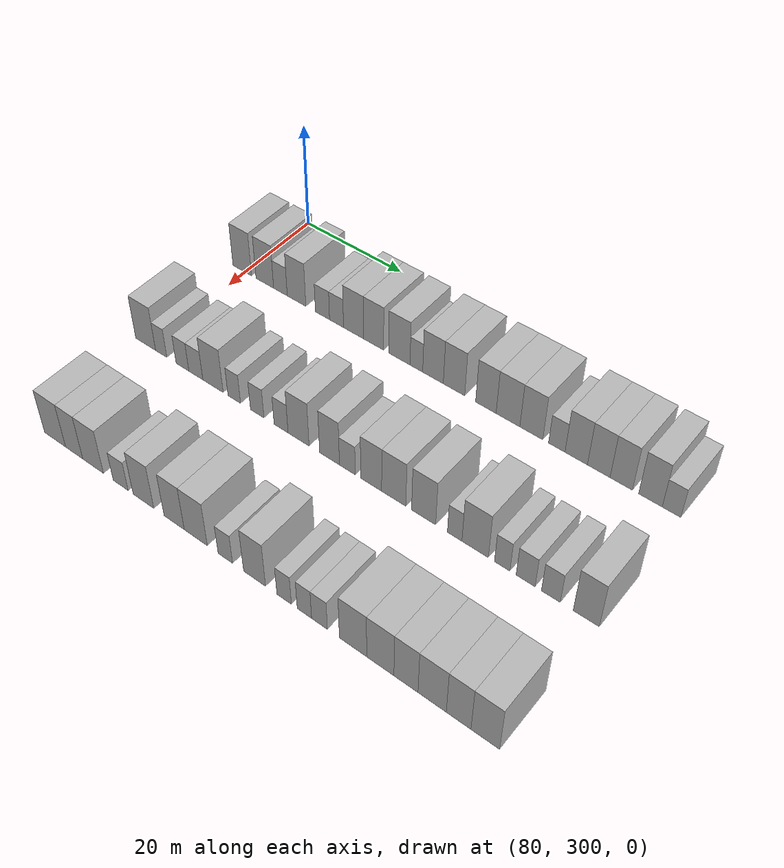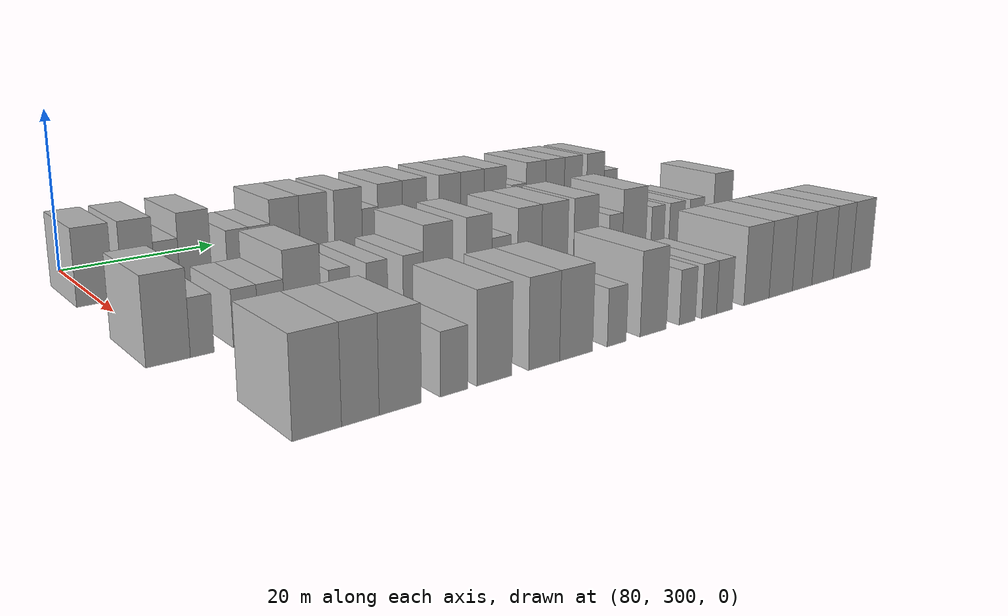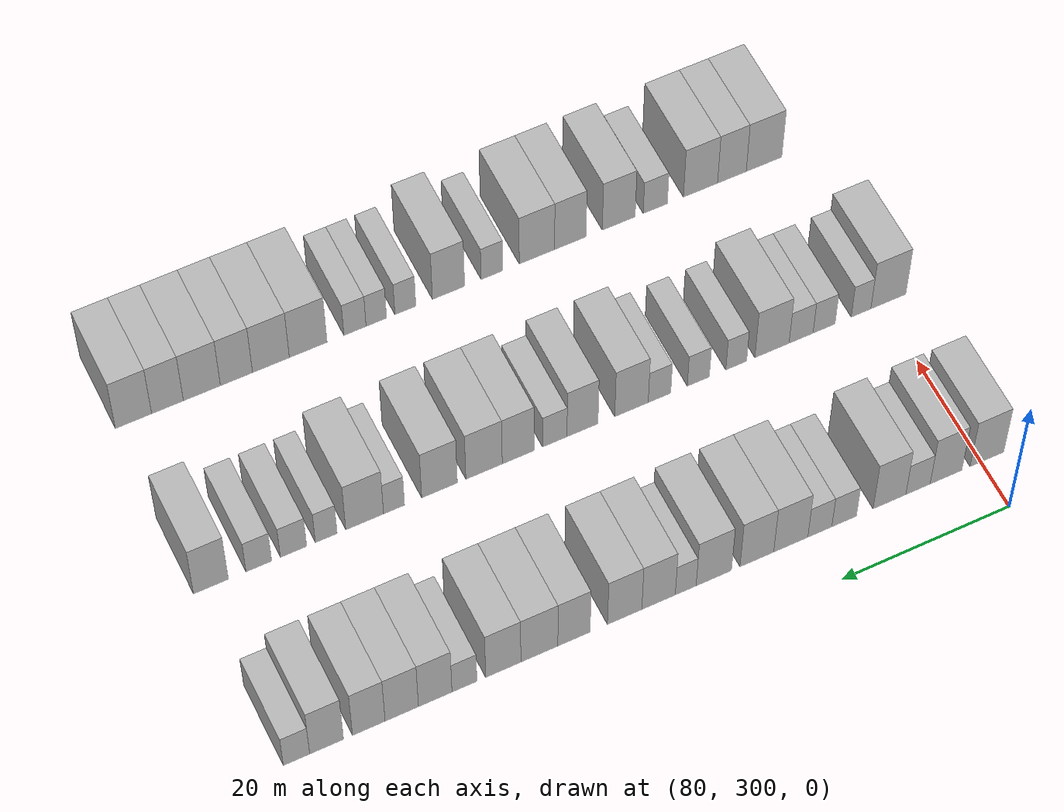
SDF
<sdf version="1.6">
 <world name="default">
  <model name="building_734">
   <static>1</static>
   <pose>91.0000 299.3169 0 0.000000 0.000000 0.000000</pose>
   <link name="link">
    <pose>0 0 4.50 0 0 0</pose>
    <collision name="collision"><geometry><box><size>10.0000 4.1003 9.0000</size></box></geometry></collision>
    <visual name="visual">
     <cast_shadows>0</cast_shadows>
     <geometry><box><size>10.0000 4.1003 9.0000</size></box></geometry>
     <material>
      <script>
       <uri>model://HANNAS_wall/materials/scripts</uri>
       <uri>model://HANNAS_wall/materials/textures</uri>
       <name>vrc/HANNAS_wall</name>
      </script>
     </material>
    </visual>
   </link>
  </model>
  <model name="building_735">
   <static>1</static>
   <pose>91.0000 304.2898 0 0.000000 0.000000 0.000000</pose>
   <link name="link">
    <pose>0 0 4.50 0 0 0</pose>
    <collision name="collision"><geometry><box><size>10.0000 3.8454 9.0000</size></box></geometry></collision>
    <visual name="visual">
     <cast_shadows>0</cast_shadows>
     <geometry><box><size>10.0000 3.8454 9.0000</size></box></geometry>
     <material>
      <script>
       <uri>model://HANNAS_wall/materials/scripts</uri>
       <uri>model://HANNAS_wall/materials/textures</uri>
       <name>vrc/HANNAS_wall</name>
      </script>
     </material>
    </visual>
   </link>
  </model>
  <model name="building_736">
   <static>1</static>
   <pose>91.0000 307.6804 0 0.000000 0.000000 0.000000</pose>
   <link name="link">
    <pose>0 0 3.00 0 0 0</pose>
    <collision name="collision"><geometry><box><size>10.0000 2.9358 6.0000</size></box></geometry></collision>
    <visual name="visual">
     <cast_shadows>0</cast_shadows>
     <geometry><box><size>10.0000 2.9358 6.0000</size></box></geometry>
     <material>
      <script>
       <uri>model://HANNAS_wall/materials/scripts</uri>
       <uri>model://HANNAS_wall/materials/textures</uri>
       <name>vrc/HANNAS_wall</name>
      </script>
     </material>
    </visual>
   </link>
  </model>
  <model name="building_737">
   <static>1</static>
   <pose>91.0000 311.1181 0 0.000000 0.000000 0.000000</pose>
   <link name="link">
    <pose>0 0 4.50 0 0 0</pose>
    <collision name="collision"><geometry><box><size>10.0000 3.9396 9.0000</size></box></geometry></collision>
    <visual name="visual">
     <cast_shadows>0</cast_shadows>
     <geometry><box><size>10.0000 3.9396 9.0000</size></box></geometry>
     <material>
      <script>
       <uri>model://HANNAS_wall/materials/scripts</uri>
       <uri>model://HANNAS_wall/materials/textures</uri>
       <name>vrc/HANNAS_wall</name>
      </script>
     </material>
    </visual>
   </link>
  </model>
  <model name="building_738">
   <static>1</static>
   <pose>91.0000 316.5554 0 0.000000 0.000000 0.000000</pose>
   <link name="link">
    <pose>0 0 3.00 0 0 0</pose>
    <collision name="collision"><geometry><box><size>10.0000 2.9350 6.0000</size></box></geometry></collision>
    <visual name="visual">
     <cast_shadows>0</cast_shadows>
     <geometry><box><size>10.0000 2.9350 6.0000</size></box></geometry>
     <material>
      <script>
       <uri>model://HANNAS_wall/materials/scripts</uri>
       <uri>model://HANNAS_wall/materials/textures</uri>
       <name>vrc/HANNAS_wall</name>
      </script>
     </material>
    </visual>
   </link>
  </model>
  <model name="building_739">
   <static>1</static>
   <pose>91.0000 319.4527 0 0.000000 0.000000 0.000000</pose>
   <link name="link">
    <pose>0 0 3.00 0 0 0</pose>
    <collision name="collision"><geometry><box><size>10.0000 2.8598 6.0000</size></box></geometry></collision>
    <visual name="visual">
     <cast_shadows>0</cast_shadows>
     <geometry><box><size>10.0000 2.8598 6.0000</size></box></geometry>
     <material>
      <script>
       <uri>model://HANNAS_wall/materials/scripts</uri>
       <uri>model://HANNAS_wall/materials/textures</uri>
       <name>vrc/HANNAS_wall</name>
      </script>
     </material>
    </visual>
   </link>
  </model>
  <model name="building_740">
   <static>1</static>
   <pose>91.0000 322.9059 0 0.000000 0.000000 0.000000</pose>
   <link name="link">
    <pose>0 0 4.50 0 0 0</pose>
    <collision name="collision"><geometry><box><size>10.0000 4.0465 9.0000</size></box></geometry></collision>
    <visual name="visual">
     <cast_shadows>0</cast_shadows>
     <geometry><box><size>10.0000 4.0465 9.0000</size></box></geometry>
     <material>
      <script>
       <uri>model://HANNAS_wall/materials/scripts</uri>
       <uri>model://HANNAS_wall/materials/textures</uri>
       <name>vrc/HANNAS_wall</name>
      </script>
     </material>
    </visual>
   </link>
  </model>
  <model name="building_741">
   <static>1</static>
   <pose>91.0000 326.9201 0 0.000000 0.000000 0.000000</pose>
   <link name="link">
    <pose>0 0 4.50 0 0 0</pose>
    <collision name="collision"><geometry><box><size>10.0000 3.9819 9.0000</size></box></geometry></collision>
    <visual name="visual">
     <cast_shadows>0</cast_shadows>
     <geometry><box><size>10.0000 3.9819 9.0000</size></box></geometry>
     <material>
      <script>
       <uri>model://HANNAS_wall/materials/scripts</uri>
       <uri>model://HANNAS_wall/materials/textures</uri>
       <name>vrc/HANNAS_wall</name>
      </script>
     </material>
    </visual>
   </link>
  </model>
  <model name="building_742">
   <static>1</static>
   <pose>91.0000 331.9820 0 0.000000 0.000000 0.000000</pose>
   <link name="link">
    <pose>0 0 4.50 0 0 0</pose>
    <collision name="collision"><geometry><box><size>10.0000 4.1418 9.0000</size></box></geometry></collision>
    <visual name="visual">
     <cast_shadows>0</cast_shadows>
     <geometry><box><size>10.0000 4.1418 9.0000</size></box></geometry>
     <material>
      <script>
       <uri>model://HANNAS_wall/materials/scripts</uri>
       <uri>model://HANNAS_wall/materials/textures</uri>
       <name>vrc/HANNAS_wall</name>
      </script>
     </material>
    </visual>
   </link>
  </model>
  <model name="building_743">
   <static>1</static>
   <pose>91.0000 335.2694 0 0.000000 0.000000 0.000000</pose>
   <link name="link">
    <pose>0 0 3.00 0 0 0</pose>
    <collision name="collision"><geometry><box><size>10.0000 2.4331 6.0000</size></box></geometry></collision>
    <visual name="visual">
     <cast_shadows>0</cast_shadows>
     <geometry><box><size>10.0000 2.4331 6.0000</size></box></geometry>
     <material>
      <script>
       <uri>model://HANNAS_wall/materials/scripts</uri>
       <uri>model://HANNAS_wall/materials/textures</uri>
       <name>vrc/HANNAS_wall</name>
      </script>
     </material>
    </visual>
   </link>
  </model>
  <model name="building_744">
   <static>1</static>
   <pose>91.0000 338.4370 0 0.000000 0.000000 0.000000</pose>
   <link name="link">
    <pose>0 0 4.50 0 0 0</pose>
    <collision name="collision"><geometry><box><size>10.0000 3.9021 9.0000</size></box></geometry></collision>
    <visual name="visual">
     <cast_shadows>0</cast_shadows>
     <geometry><box><size>10.0000 3.9021 9.0000</size></box></geometry>
     <material>
      <script>
       <uri>model://HANNAS_wall/materials/scripts</uri>
       <uri>model://HANNAS_wall/materials/textures</uri>
       <name>vrc/HANNAS_wall</name>
      </script>
     </material>
    </visual>
   </link>
  </model>
  <model name="building_745">
   <static>1</static>
   <pose>91.0000 342.3766 0 0.000000 0.000000 0.000000</pose>
   <link name="link">
    <pose>0 0 4.50 0 0 0</pose>
    <collision name="collision"><geometry><box><size>10.0000 3.9771 9.0000</size></box></geometry></collision>
    <visual name="visual">
     <cast_shadows>0</cast_shadows>
     <geometry><box><size>10.0000 3.9771 9.0000</size></box></geometry>
     <material>
      <script>
       <uri>model://HANNAS_wall/materials/scripts</uri>
       <uri>model://HANNAS_wall/materials/textures</uri>
       <name>vrc/HANNAS_wall</name>
      </script>
     </material>
    </visual>
   </link>
  </model>
  <model name="building_746">
   <static>1</static>
   <pose>91.0000 348.2203 0 0.000000 0.000000 0.000000</pose>
   <link name="link">
    <pose>0 0 4.50 0 0 0</pose>
    <collision name="collision"><geometry><box><size>10.0000 3.7103 9.0000</size></box></geometry></collision>
    <visual name="visual">
     <cast_shadows>0</cast_shadows>
     <geometry><box><size>10.0000 3.7103 9.0000</size></box></geometry>
     <material>
      <script>
       <uri>model://HANNAS_wall/materials/scripts</uri>
       <uri>model://HANNAS_wall/materials/textures</uri>
       <name>vrc/HANNAS_wall</name>
      </script>
     </material>
    </visual>
   </link>
  </model>
  <model name="building_747">
   <static>1</static>
   <pose>91.0000 352.1897 0 0.000000 0.000000 0.000000</pose>
   <link name="link">
    <pose>0 0 4.50 0 0 0</pose>
    <collision name="collision"><geometry><box><size>10.0000 4.2286 9.0000</size></box></geometry></collision>
    <visual name="visual">
     <cast_shadows>0</cast_shadows>
     <geometry><box><size>10.0000 4.2286 9.0000</size></box></geometry>
     <material>
      <script>
       <uri>model://HANNAS_wall/materials/scripts</uri>
       <uri>model://HANNAS_wall/materials/textures</uri>
       <name>vrc/HANNAS_wall</name>
      </script>
     </material>
    </visual>
   </link>
  </model>
  <model name="building_748">
   <static>1</static>
   <pose>91.0000 356.3076 0 0.000000 0.000000 0.000000</pose>
   <link name="link">
    <pose>0 0 4.50 0 0 0</pose>
    <collision name="collision"><geometry><box><size>10.0000 4.0072 9.0000</size></box></geometry></collision>
    <visual name="visual">
     <cast_shadows>0</cast_shadows>
     <geometry><box><size>10.0000 4.0072 9.0000</size></box></geometry>
     <material>
      <script>
       <uri>model://HANNAS_wall/materials/scripts</uri>
       <uri>model://HANNAS_wall/materials/textures</uri>
       <name>vrc/HANNAS_wall</name>
      </script>
     </material>
    </visual>
   </link>
  </model>
  <model name="building_749">
   <static>1</static>
   <pose>91.0000 360.7190 0 0.000000 0.000000 0.000000</pose>
   <link name="link">
    <pose>0 0 3.00 0 0 0</pose>
    <collision name="collision"><geometry><box><size>10.0000 2.8154 6.0000</size></box></geometry></collision>
    <visual name="visual">
     <cast_shadows>0</cast_shadows>
     <geometry><box><size>10.0000 2.8154 6.0000</size></box></geometry>
     <material>
      <script>
       <uri>model://HANNAS_wall/materials/scripts</uri>
       <uri>model://HANNAS_wall/materials/textures</uri>
       <name>vrc/HANNAS_wall</name>
      </script>
     </material>
    </visual>
   </link>
  </model>
  <model name="building_750">
   <static>1</static>
   <pose>91.0000 364.0165 0 0.000000 0.000000 0.000000</pose>
   <link name="link">
    <pose>0 0 4.50 0 0 0</pose>
    <collision name="collision"><geometry><box><size>10.0000 3.7797 9.0000</size></box></geometry></collision>
    <visual name="visual">
     <cast_shadows>0</cast_shadows>
     <geometry><box><size>10.0000 3.7797 9.0000</size></box></geometry>
     <material>
      <script>
       <uri>model://HANNAS_wall/materials/scripts</uri>
       <uri>model://HANNAS_wall/materials/textures</uri>
       <name>vrc/HANNAS_wall</name>
      </script>
     </material>
    </visual>
   </link>
  </model>
  <model name="building_751">
   <static>1</static>
   <pose>91.0000 367.7803 0 0.000000 0.000000 0.000000</pose>
   <link name="link">
    <pose>0 0 4.50 0 0 0</pose>
    <collision name="collision"><geometry><box><size>10.0000 3.7478 9.0000</size></box></geometry></collision>
    <visual name="visual">
     <cast_shadows>0</cast_shadows>
     <geometry><box><size>10.0000 3.7478 9.0000</size></box></geometry>
     <material>
      <script>
       <uri>model://HANNAS_wall/materials/scripts</uri>
       <uri>model://HANNAS_wall/materials/textures</uri>
       <name>vrc/HANNAS_wall</name>
      </script>
     </material>
    </visual>
   </link>
  </model>
  <model name="building_752">
   <static>1</static>
   <pose>91.0000 371.4776 0 0.000000 0.000000 0.000000</pose>
   <link name="link">
    <pose>0 0 4.50 0 0 0</pose>
    <collision name="collision"><geometry><box><size>10.0000 3.6469 9.0000</size></box></geometry></collision>
    <visual name="visual">
     <cast_shadows>0</cast_shadows>
     <geometry><box><size>10.0000 3.6469 9.0000</size></box></geometry>
     <material>
      <script>
       <uri>model://HANNAS_wall/materials/scripts</uri>
       <uri>model://HANNAS_wall/materials/textures</uri>
       <name>vrc/HANNAS_wall</name>
      </script>
     </material>
    </visual>
   </link>
  </model>
  <model name="building_753">
   <static>1</static>
   <pose>91.0000 376.1799 0 0.000000 0.000000 0.000000</pose>
   <link name="link">
    <pose>0 0 4.50 0 0 0</pose>
    <collision name="collision"><geometry><box><size>10.0000 3.7577 9.0000</size></box></geometry></collision>
    <visual name="visual">
     <cast_shadows>0</cast_shadows>
     <geometry><box><size>10.0000 3.7577 9.0000</size></box></geometry>
     <material>
      <script>
       <uri>model://HANNAS_wall/materials/scripts</uri>
       <uri>model://HANNAS_wall/materials/textures</uri>
       <name>vrc/HANNAS_wall</name>
      </script>
     </material>
    </visual>
   </link>
  </model>
  <model name="building_754">
   <static>1</static>
   <pose>91.0000 379.5196 0 0.000000 0.000000 0.000000</pose>
   <link name="link">
    <pose>0 0 3.00 0 0 0</pose>
    <collision name="collision"><geometry><box><size>10.0000 2.9217 6.0000</size></box></geometry></collision>
    <visual name="visual">
     <cast_shadows>0</cast_shadows>
     <geometry><box><size>10.0000 2.9217 6.0000</size></box></geometry>
     <material>
      <script>
       <uri>model://HANNAS_wall/materials/scripts</uri>
       <uri>model://HANNAS_wall/materials/textures</uri>
       <name>vrc/HANNAS_wall</name>
      </script>
     </material>
    </visual>
   </link>
  </model>
  <model name="building_912">
   <static>1</static>
   <pose>113.0000 299.1599 0 0.000000 0.000000 0.000000</pose>
   <link name="link">
    <pose>0 0 4.50 0 0 0</pose>
    <collision name="collision"><geometry><box><size>10.0000 4.3490 9.0000</size></box></geometry></collision>
    <visual name="visual">
     <cast_shadows>0</cast_shadows>
     <geometry><box><size>10.0000 4.3490 9.0000</size></box></geometry>
     <material>
      <script>
       <uri>model://HANNAS_wall/materials/scripts</uri>
       <uri>model://HANNAS_wall/materials/textures</uri>
       <name>vrc/HANNAS_wall</name>
      </script>
     </material>
    </visual>
   </link>
  </model>
  <model name="building_913">
   <static>1</static>
   <pose>113.0000 302.5490 0 0.000000 0.000000 0.000000</pose>
   <link name="link">
    <pose>0 0 3.00 0 0 0</pose>
    <collision name="collision"><geometry><box><size>10.0000 2.4293 6.0000</size></box></geometry></collision>
    <visual name="visual">
     <cast_shadows>0</cast_shadows>
     <geometry><box><size>10.0000 2.4293 6.0000</size></box></geometry>
     <material>
      <script>
       <uri>model://HANNAS_wall/materials/scripts</uri>
       <uri>model://HANNAS_wall/materials/textures</uri>
       <name>vrc/HANNAS_wall</name>
      </script>
     </material>
    </visual>
   </link>
  </model>
  <model name="building_914">
   <static>1</static>
   <pose>113.0000 307.1163 0 0.000000 0.000000 0.000000</pose>
   <link name="link">
    <pose>0 0 3.00 0 0 0</pose>
    <collision name="collision"><geometry><box><size>10.0000 2.7054 6.0000</size></box></geometry></collision>
    <visual name="visual">
     <cast_shadows>0</cast_shadows>
     <geometry><box><size>10.0000 2.7054 6.0000</size></box></geometry>
     <material>
      <script>
       <uri>model://HANNAS_wall/materials/scripts</uri>
       <uri>model://HANNAS_wall/materials/textures</uri>
       <name>vrc/HANNAS_wall</name>
      </script>
     </material>
    </visual>
   </link>
  </model>
  <model name="building_915">
   <static>1</static>
   <pose>113.0000 309.9411 0 0.000000 0.000000 0.000000</pose>
   <link name="link">
    <pose>0 0 3.00 0 0 0</pose>
    <collision name="collision"><geometry><box><size>10.0000 2.9441 6.0000</size></box></geometry></collision>
    <visual name="visual">
     <cast_shadows>0</cast_shadows>
     <geometry><box><size>10.0000 2.9441 6.0000</size></box></geometry>
     <material>
      <script>
       <uri>model://HANNAS_wall/materials/scripts</uri>
       <uri>model://HANNAS_wall/materials/textures</uri>
       <name>vrc/HANNAS_wall</name>
      </script>
     </material>
    </visual>
   </link>
  </model>
  <model name="building_916">
   <static>1</static>
   <pose>113.0000 313.5080 0 0.000000 0.000000 0.000000</pose>
   <link name="link">
    <pose>0 0 4.50 0 0 0</pose>
    <collision name="collision"><geometry><box><size>10.0000 4.1897 9.0000</size></box></geometry></collision>
    <visual name="visual">
     <cast_shadows>0</cast_shadows>
     <geometry><box><size>10.0000 4.1897 9.0000</size></box></geometry>
     <material>
      <script>
       <uri>model://HANNAS_wall/materials/scripts</uri>
       <uri>model://HANNAS_wall/materials/textures</uri>
       <name>vrc/HANNAS_wall</name>
      </script>
     </material>
    </visual>
   </link>
  </model>
  <model name="building_917">
   <static>1</static>
   <pose>113.0000 317.8705 0 0.000000 0.000000 0.000000</pose>
   <link name="link">
    <pose>0 0 3.00 0 0 0</pose>
    <collision name="collision"><geometry><box><size>10.0000 2.5352 6.0000</size></box></geometry></collision>
    <visual name="visual">
     <cast_shadows>0</cast_shadows>
     <geometry><box><size>10.0000 2.5352 6.0000</size></box></geometry>
     <material>
      <script>
       <uri>model://HANNAS_wall/materials/scripts</uri>
       <uri>model://HANNAS_wall/materials/textures</uri>
       <name>vrc/HANNAS_wall</name>
      </script>
     </material>
    </visual>
   </link>
  </model>
  <model name="building_918">
   <static>1</static>
   <pose>113.0000 322.4713 0 0.000000 0.000000 0.000000</pose>
   <link name="link">
    <pose>0 0 3.00 0 0 0</pose>
    <collision name="collision"><geometry><box><size>10.0000 2.6663 6.0000</size></box></geometry></collision>
    <visual name="visual">
     <cast_shadows>0</cast_shadows>
     <geometry><box><size>10.0000 2.6663 6.0000</size></box></geometry>
     <material>
      <script>
       <uri>model://HANNAS_wall/materials/scripts</uri>
       <uri>model://HANNAS_wall/materials/textures</uri>
       <name>vrc/HANNAS_wall</name>
      </script>
     </material>
    </visual>
   </link>
  </model>
  <model name="building_919">
   <static>1</static>
   <pose>113.0000 327.1598 0 0.000000 0.000000 0.000000</pose>
   <link name="link">
    <pose>0 0 3.00 0 0 0</pose>
    <collision name="collision"><geometry><box><size>10.0000 2.7108 6.0000</size></box></geometry></collision>
    <visual name="visual">
     <cast_shadows>0</cast_shadows>
     <geometry><box><size>10.0000 2.7108 6.0000</size></box></geometry>
     <material>
      <script>
       <uri>model://HANNAS_wall/materials/scripts</uri>
       <uri>model://HANNAS_wall/materials/textures</uri>
       <name>vrc/HANNAS_wall</name>
      </script>
     </material>
    </visual>
   </link>
  </model>
  <model name="building_920">
   <static>1</static>
   <pose>113.0000 330.5242 0 0.000000 0.000000 0.000000</pose>
   <link name="link">
    <pose>0 0 4.50 0 0 0</pose>
    <collision name="collision"><geometry><box><size>10.0000 4.0180 9.0000</size></box></geometry></collision>
    <visual name="visual">
     <cast_shadows>0</cast_shadows>
     <geometry><box><size>10.0000 4.0180 9.0000</size></box></geometry>
     <material>
      <script>
       <uri>model://HANNAS_wall/materials/scripts</uri>
       <uri>model://HANNAS_wall/materials/textures</uri>
       <name>vrc/HANNAS_wall</name>
      </script>
     </material>
    </visual>
   </link>
  </model>
  <model name="building_921">
   <static>1</static>
   <pose>113.0000 336.3778 0 0.000000 0.000000 0.000000</pose>
   <link name="link">
    <pose>0 0 4.50 0 0 0</pose>
    <collision name="collision"><geometry><box><size>10.0000 3.6892 9.0000</size></box></geometry></collision>
    <visual name="visual">
     <cast_shadows>0</cast_shadows>
     <geometry><box><size>10.0000 3.6892 9.0000</size></box></geometry>
     <material>
      <script>
       <uri>model://HANNAS_wall/materials/scripts</uri>
       <uri>model://HANNAS_wall/materials/textures</uri>
       <name>vrc/HANNAS_wall</name>
      </script>
     </material>
    </visual>
   </link>
  </model>
  <model name="building_922">
   <static>1</static>
   <pose>113.0000 339.6715 0 0.000000 0.000000 0.000000</pose>
   <link name="link">
    <pose>0 0 3.00 0 0 0</pose>
    <collision name="collision"><geometry><box><size>10.0000 2.8982 6.0000</size></box></geometry></collision>
    <visual name="visual">
     <cast_shadows>0</cast_shadows>
     <geometry><box><size>10.0000 2.8982 6.0000</size></box></geometry>
     <material>
      <script>
       <uri>model://HANNAS_wall/materials/scripts</uri>
       <uri>model://HANNAS_wall/materials/textures</uri>
       <name>vrc/HANNAS_wall</name>
      </script>
     </material>
    </visual>
   </link>
  </model>
  <model name="building_923">
   <static>1</static>
   <pose>113.0000 343.9980 0 0.000000 0.000000 0.000000</pose>
   <link name="link">
    <pose>0 0 4.50 0 0 0</pose>
    <collision name="collision"><geometry><box><size>10.0000 3.7550 9.0000</size></box></geometry></collision>
    <visual name="visual">
     <cast_shadows>0</cast_shadows>
     <geometry><box><size>10.0000 3.7550 9.0000</size></box></geometry>
     <material>
      <script>
       <uri>model://HANNAS_wall/materials/scripts</uri>
       <uri>model://HANNAS_wall/materials/textures</uri>
       <name>vrc/HANNAS_wall</name>
      </script>
     </material>
    </visual>
   </link>
  </model>
  <model name="building_924">
   <static>1</static>
   <pose>113.0000 348.0125 0 0.000000 0.000000 0.000000</pose>
   <link name="link">
    <pose>0 0 4.50 0 0 0</pose>
    <collision name="collision"><geometry><box><size>10.0000 4.2740 9.0000</size></box></geometry></collision>
    <visual name="visual">
     <cast_shadows>0</cast_shadows>
     <geometry><box><size>10.0000 4.2740 9.0000</size></box></geometry>
     <material>
      <script>
       <uri>model://HANNAS_wall/materials/scripts</uri>
       <uri>model://HANNAS_wall/materials/textures</uri>
       <name>vrc/HANNAS_wall</name>
      </script>
     </material>
    </visual>
   </link>
  </model>
  <model name="building_925">
   <static>1</static>
   <pose>113.0000 353.2280 0 0.000000 0.000000 0.000000</pose>
   <link name="link">
    <pose>0 0 4.50 0 0 0</pose>
    <collision name="collision"><geometry><box><size>10.0000 4.1570 9.0000</size></box></geometry></collision>
    <visual name="visual">
     <cast_shadows>0</cast_shadows>
     <geometry><box><size>10.0000 4.1570 9.0000</size></box></geometry>
     <material>
      <script>
       <uri>model://HANNAS_wall/materials/scripts</uri>
       <uri>model://HANNAS_wall/materials/textures</uri>
       <name>vrc/HANNAS_wall</name>
      </script>
     </material>
    </visual>
   </link>
  </model>
  <model name="building_926">
   <static>1</static>
   <pose>113.0000 358.5182 0 0.000000 0.000000 0.000000</pose>
   <link name="link">
    <pose>0 0 3.00 0 0 0</pose>
    <collision name="collision"><geometry><box><size>10.0000 2.4235 6.0000</size></box></geometry></collision>
    <visual name="visual">
     <cast_shadows>0</cast_shadows>
     <geometry><box><size>10.0000 2.4235 6.0000</size></box></geometry>
     <material>
      <script>
       <uri>model://HANNAS_wall/materials/scripts</uri>
       <uri>model://HANNAS_wall/materials/textures</uri>
       <name>vrc/HANNAS_wall</name>
      </script>
     </material>
    </visual>
   </link>
  </model>
  <model name="building_927">
   <static>1</static>
   <pose>113.0000 361.9149 0 0.000000 0.000000 0.000000</pose>
   <link name="link">
    <pose>0 0 4.50 0 0 0</pose>
    <collision name="collision"><geometry><box><size>10.0000 4.3699 9.0000</size></box></geometry></collision>
    <visual name="visual">
     <cast_shadows>0</cast_shadows>
     <geometry><box><size>10.0000 4.3699 9.0000</size></box></geometry>
     <material>
      <script>
       <uri>model://HANNAS_wall/materials/scripts</uri>
       <uri>model://HANNAS_wall/materials/textures</uri>
       <name>vrc/HANNAS_wall</name>
      </script>
     </material>
    </visual>
   </link>
  </model>
  <model name="building_928">
   <static>1</static>
   <pose>113.0000 366.3488 0 0.000000 0.000000 0.000000</pose>
   <link name="link">
    <pose>0 0 3.00 0 0 0</pose>
    <collision name="collision"><geometry><box><size>10.0000 2.4980 6.0000</size></box></geometry></collision>
    <visual name="visual">
     <cast_shadows>0</cast_shadows>
     <geometry><box><size>10.0000 2.4980 6.0000</size></box></geometry>
     <material>
      <script>
       <uri>model://HANNAS_wall/materials/scripts</uri>
       <uri>model://HANNAS_wall/materials/textures</uri>
       <name>vrc/HANNAS_wall</name>
      </script>
     </material>
    </visual>
   </link>
  </model>
  <model name="building_929">
   <static>1</static>
   <pose>113.0000 370.0969 0 0.000000 0.000000 0.000000</pose>
   <link name="link">
    <pose>0 0 3.00 0 0 0</pose>
    <collision name="collision"><geometry><box><size>10.0000 2.9981 6.0000</size></box></geometry></collision>
    <visual name="visual">
     <cast_shadows>0</cast_shadows>
     <geometry><box><size>10.0000 2.9981 6.0000</size></box></geometry>
     <material>
      <script>
       <uri>model://HANNAS_wall/materials/scripts</uri>
       <uri>model://HANNAS_wall/materials/textures</uri>
       <name>vrc/HANNAS_wall</name>
      </script>
     </material>
    </visual>
   </link>
  </model>
  <model name="building_930">
   <static>1</static>
   <pose>113.0000 374.0588 0 0.000000 0.000000 0.000000</pose>
   <link name="link">
    <pose>0 0 3.00 0 0 0</pose>
    <collision name="collision"><geometry><box><size>10.0000 2.9256 6.0000</size></box></geometry></collision>
    <visual name="visual">
     <cast_shadows>0</cast_shadows>
     <geometry><box><size>10.0000 2.9256 6.0000</size></box></geometry>
     <material>
      <script>
       <uri>model://HANNAS_wall/materials/scripts</uri>
       <uri>model://HANNAS_wall/materials/textures</uri>
       <name>vrc/HANNAS_wall</name>
      </script>
     </material>
    </visual>
   </link>
  </model>
  <model name="building_931">
   <static>1</static>
   <pose>113.0000 379.4941 0 0.000000 0.000000 0.000000</pose>
   <link name="link">
    <pose>0 0 4.50 0 0 0</pose>
    <collision name="collision"><geometry><box><size>10.0000 3.9450 9.0000</size></box></geometry></collision>
    <visual name="visual">
     <cast_shadows>0</cast_shadows>
     <geometry><box><size>10.0000 3.9450 9.0000</size></box></geometry>
     <material>
      <script>
       <uri>model://HANNAS_wall/materials/scripts</uri>
       <uri>model://HANNAS_wall/materials/textures</uri>
       <name>vrc/HANNAS_wall</name>
      </script>
     </material>
    </visual>
   </link>
  </model>
  <model name="building_1102">
   <static>1</static>
   <pose>135.0000 302.8940 0 0.000000 0.000000 0.000000</pose>
   <link name="link">
    <pose>0 0 4.50 0 0 0</pose>
    <collision name="collision"><geometry><box><size>10.0000 4.4814 9.0000</size></box></geometry></collision>
    <visual name="visual">
     <cast_shadows>0</cast_shadows>
     <geometry><box><size>10.0000 4.4814 9.0000</size></box></geometry>
     <material>
      <script>
       <uri>model://HANNAS_wall/materials/scripts</uri>
       <uri>model://HANNAS_wall/materials/textures</uri>
       <name>vrc/HANNAS_wall</name>
      </script>
     </material>
    </visual>
   </link>
  </model>
  <model name="building_1103">
   <static>1</static>
   <pose>135.0000 306.9372 0 0.000000 0.000000 0.000000</pose>
   <link name="link">
    <pose>0 0 4.50 0 0 0</pose>
    <collision name="collision"><geometry><box><size>10.0000 3.6050 9.0000</size></box></geometry></collision>
    <visual name="visual">
     <cast_shadows>0</cast_shadows>
     <geometry><box><size>10.0000 3.6050 9.0000</size></box></geometry>
     <material>
      <script>
       <uri>model://HANNAS_wall/materials/scripts</uri>
       <uri>model://HANNAS_wall/materials/textures</uri>
       <name>vrc/HANNAS_wall</name>
      </script>
     </material>
    </visual>
   </link>
  </model>
  <model name="building_1104">
   <static>1</static>
   <pose>135.0000 310.8746 0 0.000000 0.000000 0.000000</pose>
   <link name="link">
    <pose>0 0 4.50 0 0 0</pose>
    <collision name="collision"><geometry><box><size>10.0000 4.2698 9.0000</size></box></geometry></collision>
    <visual name="visual">
     <cast_shadows>0</cast_shadows>
     <geometry><box><size>10.0000 4.2698 9.0000</size></box></geometry>
     <material>
      <script>
       <uri>model://HANNAS_wall/materials/scripts</uri>
       <uri>model://HANNAS_wall/materials/textures</uri>
       <name>vrc/HANNAS_wall</name>
      </script>
     </material>
    </visual>
   </link>
  </model>
  <model name="building_1105">
   <static>1</static>
   <pose>135.0000 316.5095 0 0.000000 0.000000 0.000000</pose>
   <link name="link">
    <pose>0 0 3.00 0 0 0</pose>
    <collision name="collision"><geometry><box><size>10.0000 3.0000 6.0000</size></box></geometry></collision>
    <visual name="visual">
     <cast_shadows>0</cast_shadows>
     <geometry><box><size>10.0000 3.0000 6.0000</size></box></geometry>
     <material>
      <script>
       <uri>model://HANNAS_wall/materials/scripts</uri>
       <uri>model://HANNAS_wall/materials/textures</uri>
       <name>vrc/HANNAS_wall</name>
      </script>
     </material>
    </visual>
   </link>
  </model>
  <model name="building_1106">
   <static>1</static>
   <pose>135.0000 321.0414 0 0.000000 0.000000 0.000000</pose>
   <link name="link">
    <pose>0 0 4.50 0 0 0</pose>
    <collision name="collision"><geometry><box><size>10.0000 4.0639 9.0000</size></box></geometry></collision>
    <visual name="visual">
     <cast_shadows>0</cast_shadows>
     <geometry><box><size>10.0000 4.0639 9.0000</size></box></geometry>
     <material>
      <script>
       <uri>model://HANNAS_wall/materials/scripts</uri>
       <uri>model://HANNAS_wall/materials/textures</uri>
       <name>vrc/HANNAS_wall</name>
      </script>
     </material>
    </visual>
   </link>
  </model>
  <model name="building_1107">
   <static>1</static>
   <pose>135.0000 327.0023 0 0.000000 0.000000 0.000000</pose>
   <link name="link">
    <pose>0 0 4.50 0 0 0</pose>
    <collision name="collision"><geometry><box><size>10.0000 3.8580 9.0000</size></box></geometry></collision>
    <visual name="visual">
     <cast_shadows>0</cast_shadows>
     <geometry><box><size>10.0000 3.8580 9.0000</size></box></geometry>
     <material>
      <script>
       <uri>model://HANNAS_wall/materials/scripts</uri>
       <uri>model://HANNAS_wall/materials/textures</uri>
       <name>vrc/HANNAS_wall</name>
      </script>
     </material>
    </visual>
   </link>
  </model>
  <model name="building_1108">
   <static>1</static>
   <pose>135.0000 331.0910 0 0.000000 0.000000 0.000000</pose>
   <link name="link">
    <pose>0 0 4.50 0 0 0</pose>
    <collision name="collision"><geometry><box><size>10.0000 4.3193 9.0000</size></box></geometry></collision>
    <visual name="visual">
     <cast_shadows>0</cast_shadows>
     <geometry><box><size>10.0000 4.3193 9.0000</size></box></geometry>
     <material>
      <script>
       <uri>model://HANNAS_wall/materials/scripts</uri>
       <uri>model://HANNAS_wall/materials/textures</uri>
       <name>vrc/HANNAS_wall</name>
      </script>
     </material>
    </visual>
   </link>
  </model>
  <model name="building_1109">
   <static>1</static>
   <pose>135.0000 336.5720 0 0.000000 0.000000 0.000000</pose>
   <link name="link">
    <pose>0 0 3.00 0 0 0</pose>
    <collision name="collision"><geometry><box><size>10.0000 2.6427 6.0000</size></box></geometry></collision>
    <visual name="visual">
     <cast_shadows>0</cast_shadows>
     <geometry><box><size>10.0000 2.6427 6.0000</size></box></geometry>
     <material>
      <script>
       <uri>model://HANNAS_wall/materials/scripts</uri>
       <uri>model://HANNAS_wall/materials/textures</uri>
       <name>vrc/HANNAS_wall</name>
      </script>
     </material>
    </visual>
   </link>
  </model>
  <model name="building_1110">
   <static>1</static>
   <pose>135.0000 341.8369 0 0.000000 0.000000 0.000000</pose>
   <link name="link">
    <pose>0 0 4.50 0 0 0</pose>
    <collision name="collision"><geometry><box><size>10.0000 3.8873 9.0000</size></box></geometry></collision>
    <visual name="visual">
     <cast_shadows>0</cast_shadows>
     <geometry><box><size>10.0000 3.8873 9.0000</size></box></geometry>
     <material>
      <script>
       <uri>model://HANNAS_wall/materials/scripts</uri>
       <uri>model://HANNAS_wall/materials/textures</uri>
       <name>vrc/HANNAS_wall</name>
      </script>
     </material>
    </visual>
   </link>
  </model>
  <model name="building_1111">
   <static>1</static>
   <pose>135.0000 347.0349 0 0.000000 0.000000 0.000000</pose>
   <link name="link">
    <pose>0 0 3.00 0 0 0</pose>
    <collision name="collision"><geometry><box><size>10.0000 2.5085 6.0000</size></box></geometry></collision>
    <visual name="visual">
     <cast_shadows>0</cast_shadows>
     <geometry><box><size>10.0000 2.5085 6.0000</size></box></geometry>
     <material>
      <script>
       <uri>model://HANNAS_wall/materials/scripts</uri>
       <uri>model://HANNAS_wall/materials/textures</uri>
       <name>vrc/HANNAS_wall</name>
      </script>
     </material>
    </visual>
   </link>
  </model>
  <model name="building_1112">
   <static>1</static>
   <pose>135.0000 350.5113 0 0.000000 0.000000 0.000000</pose>
   <link name="link">
    <pose>0 0 3.00 0 0 0</pose>
    <collision name="collision"><geometry><box><size>10.0000 2.4444 6.0000</size></box></geometry></collision>
    <visual name="visual">
     <cast_shadows>0</cast_shadows>
     <geometry><box><size>10.0000 2.4444 6.0000</size></box></geometry>
     <material>
      <script>
       <uri>model://HANNAS_wall/materials/scripts</uri>
       <uri>model://HANNAS_wall/materials/textures</uri>
       <name>vrc/HANNAS_wall</name>
      </script>
     </material>
    </visual>
   </link>
  </model>
  <model name="building_1113">
   <static>1</static>
   <pose>135.0000 353.0562 0 0.000000 0.000000 0.000000</pose>
   <link name="link">
    <pose>0 0 3.00 0 0 0</pose>
    <collision name="collision"><geometry><box><size>10.0000 2.6454 6.0000</size></box></geometry></collision>
    <visual name="visual">
     <cast_shadows>0</cast_shadows>
     <geometry><box><size>10.0000 2.6454 6.0000</size></box></geometry>
     <material>
      <script>
       <uri>model://HANNAS_wall/materials/scripts</uri>
       <uri>model://HANNAS_wall/materials/textures</uri>
       <name>vrc/HANNAS_wall</name>
      </script>
     </material>
    </visual>
   </link>
  </model>
  <model name="building_1114">
   <static>1</static>
   <pose>135.0000 358.6094 0 0.000000 0.000000 0.000000</pose>
   <link name="link">
    <pose>0 0 4.50 0 0 0</pose>
    <collision name="collision"><geometry><box><size>10.0000 4.4610 9.0000</size></box></geometry></collision>
    <visual name="visual">
     <cast_shadows>0</cast_shadows>
     <geometry><box><size>10.0000 4.4610 9.0000</size></box></geometry>
     <material>
      <script>
       <uri>model://HANNAS_wall/materials/scripts</uri>
       <uri>model://HANNAS_wall/materials/textures</uri>
       <name>vrc/HANNAS_wall</name>
      </script>
     </material>
    </visual>
   </link>
  </model>
  <model name="building_1115">
   <static>1</static>
   <pose>135.0000 363.0090 0 0.000000 0.000000 0.000000</pose>
   <link name="link">
    <pose>0 0 4.50 0 0 0</pose>
    <collision name="collision"><geometry><box><size>10.0000 4.3382 9.0000</size></box></geometry></collision>
    <visual name="visual">
     <cast_shadows>0</cast_shadows>
     <geometry><box><size>10.0000 4.3382 9.0000</size></box></geometry>
     <material>
      <script>
       <uri>model://HANNAS_wall/materials/scripts</uri>
       <uri>model://HANNAS_wall/materials/textures</uri>
       <name>vrc/HANNAS_wall</name>
      </script>
     </material>
    </visual>
   </link>
  </model>
  <model name="building_1116">
   <static>1</static>
   <pose>135.0000 367.0604 0 0.000000 0.000000 0.000000</pose>
   <link name="link">
    <pose>0 0 4.50 0 0 0</pose>
    <collision name="collision"><geometry><box><size>10.0000 3.7646 9.0000</size></box></geometry></collision>
    <visual name="visual">
     <cast_shadows>0</cast_shadows>
     <geometry><box><size>10.0000 3.7646 9.0000</size></box></geometry>
     <material>
      <script>
       <uri>model://HANNAS_wall/materials/scripts</uri>
       <uri>model://HANNAS_wall/materials/textures</uri>
       <name>vrc/HANNAS_wall</name>
      </script>
     </material>
    </visual>
   </link>
  </model>
  <model name="building_1117">
   <static>1</static>
   <pose>135.0000 371.1047 0 0.000000 0.000000 0.000000</pose>
   <link name="link">
    <pose>0 0 4.50 0 0 0</pose>
    <collision name="collision"><geometry><box><size>10.0000 4.3240 9.0000</size></box></geometry></collision>
    <visual name="visual">
     <cast_shadows>0</cast_shadows>
     <geometry><box><size>10.0000 4.3240 9.0000</size></box></geometry>
     <material>
      <script>
       <uri>model://HANNAS_wall/materials/scripts</uri>
       <uri>model://HANNAS_wall/materials/textures</uri>
       <name>vrc/HANNAS_wall</name>
      </script>
     </material>
    </visual>
   </link>
  </model>
  <model name="building_1118">
   <static>1</static>
   <pose>135.0000 375.1094 0 0.000000 0.000000 0.000000</pose>
   <link name="link">
    <pose>0 0 4.50 0 0 0</pose>
    <collision name="collision"><geometry><box><size>10.0000 3.6853 9.0000</size></box></geometry></collision>
    <visual name="visual">
     <cast_shadows>0</cast_shadows>
     <geometry><box><size>10.0000 3.6853 9.0000</size></box></geometry>
     <material>
      <script>
       <uri>model://HANNAS_wall/materials/scripts</uri>
       <uri>model://HANNAS_wall/materials/textures</uri>
       <name>vrc/HANNAS_wall</name>
      </script>
     </material>
    </visual>
   </link>
  </model>
  <model name="building_1119">
   <static>1</static>
   <pose>135.0000 379.0530 0 0.000000 0.000000 0.000000</pose>
   <link name="link">
    <pose>0 0 4.50 0 0 0</pose>
    <collision name="collision"><geometry><box><size>10.0000 4.2019 9.0000</size></box></geometry></collision>
    <visual name="visual">
     <cast_shadows>0</cast_shadows>
     <geometry><box><size>10.0000 4.2019 9.0000</size></box></geometry>
     <material>
      <script>
       <uri>model://HANNAS_wall/materials/scripts</uri>
       <uri>model://HANNAS_wall/materials/textures</uri>
       <name>vrc/HANNAS_wall</name>
      </script>
     </material>
    </visual>
   </link>
  </model>
 </world>
</sdf>
